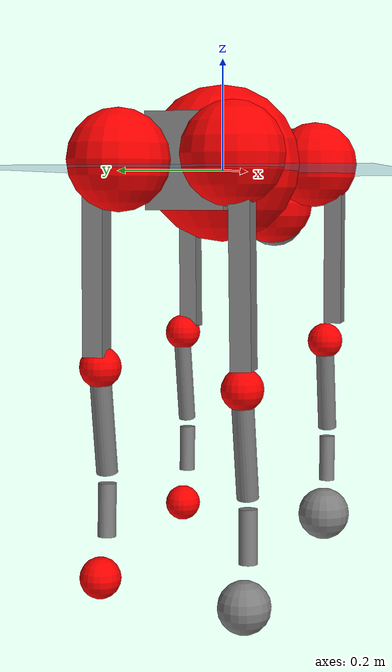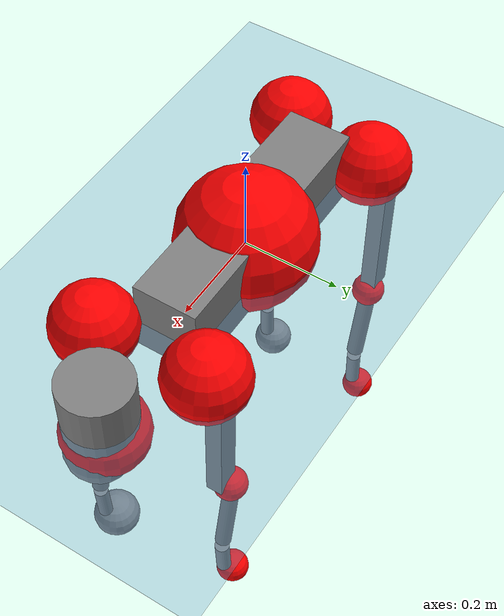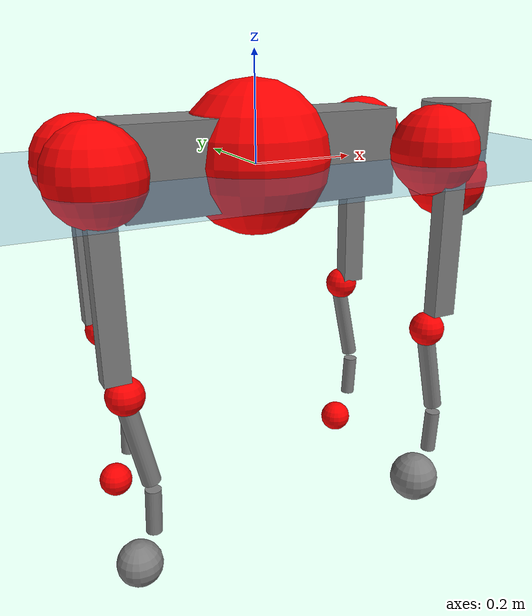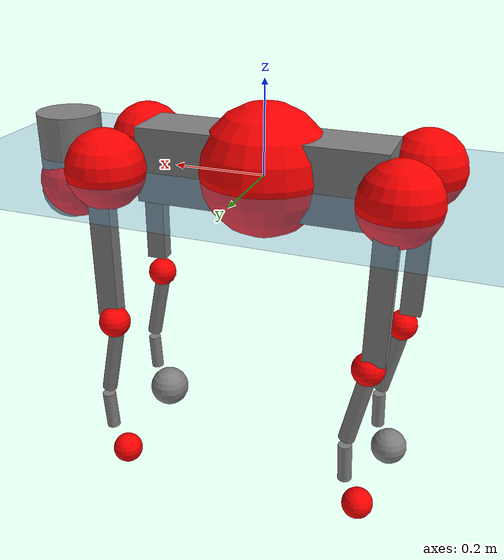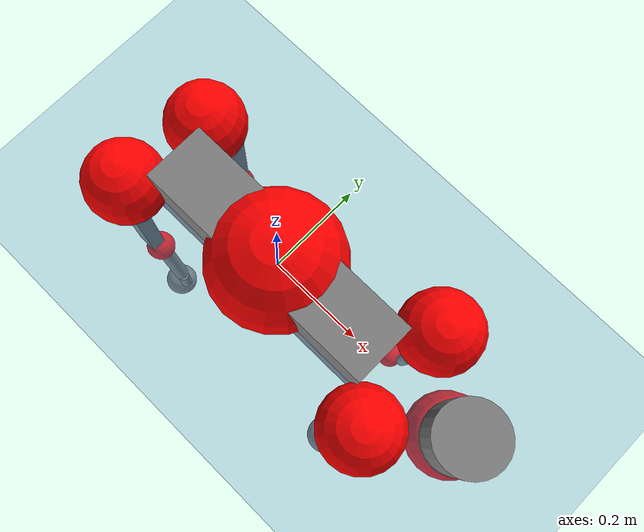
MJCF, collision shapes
<mujoco model="go2">
  <compiler angle="radian" assetdir="assets" balanceinertia="true" inertiafromgeom="false"/>

  <option timestep="0.005" density="1.2" viscosity="2e-05"/>

  <size nkey="1"/>

  <visual>
    <quality shadowsize="8192"/>
    <map shadowclip="0.5"/>
  </visual>

  <default>
    <default class="/">
      <geom contype="0" conaffinity="0" group="1" solref="-1000 -80"/>
      <site size="0.01 0.005 0.005" group="5"/>
      <general forcelimited="true" biastype="affine" gainprm="20" biasprm="0 -20 -0.5"/>
      <default class="go2">
        <joint armature="0.01" damping="0.01" frictionloss="0.2"/>
        <geom condim="1" margin="0.001"/>
        <default class="visual">
          <geom type="mesh" group="2"/>
        </default>
        <default class="collision">
          <geom group="3"/>
          <default class="foot">
            <geom size="0.022 0 0" condim="6" priority="1" friction="0.8 0.02 0.01" solimp="0.015 1 0.022"/>
          </default>
        </default>
        <default class="reward_collision_sphere">
          <geom group="5" rgba="1 0 0 1"/>
        </default>
      </default>
    </default>
  </default>

  <asset>
    <texture type="skybox" colorspace="auto" name="//unnamed_texture_0" builtin="gradient" rgb1="0.95 0.95 0.95" rgb2="0.95 0.95 0.95" width="100" height="600"/>
    <texture type="2d" colorspace="auto" name="texplane" builtin="checker" rgb1="0.345 0.575 0.748" rgb2="0.345 0.575 0.748" markrgb="1 1 1" width="512" height="512"/>
    <material name="MatPlane" class="/" texture="texplane" texuniform="true" texrepeat="2 2" specular="0.9"/>
    <material name="metal" class="/" rgba="0.9 0.95 0.95 1"/>
    <material name="black" class="/" rgba="0 0 0 1"/>
    <material name="white" class="/"/>
    <material name="gray" class="/" rgba="0.671705 0.692426 0.77427 1"/>
    <mesh name="base_0" class="/" file="base_0.obj"/>
    <mesh name="base_1" class="/" file="base_1.obj"/>
    <mesh name="base_2" class="/" file="base_2.obj"/>
    <mesh name="base_3" class="/" file="base_3.obj"/>
    <mesh name="base_4" class="/" file="base_4.obj"/>
    <mesh name="hip_0" class="/" file="hip_0.obj"/>
    <mesh name="hip_1" class="/" file="hip_1.obj"/>
    <mesh name="thigh_0" class="/" file="thigh_0.obj"/>
    <mesh name="thigh_1" class="/" file="thigh_1.obj"/>
    <mesh name="thigh_mirror_0" class="/" file="thigh_mirror_0.obj"/>
    <mesh name="thigh_mirror_1" class="/" file="thigh_mirror_1.obj"/>
    <mesh name="calf_0" class="/" file="calf_0.obj"/>
    <mesh name="calf_1" class="/" file="calf_1.obj"/>
    <mesh name="calf_mirror_0" class="/" file="calf_mirror_0.obj"/>
    <mesh name="calf_mirror_1" class="/" file="calf_mirror_1.obj"/>
    <mesh name="foot" class="/" file="foot.obj"/>
  </asset>

  <worldbody>
    <geom name="floor" class="/" size="100 100 0.125" type="plane" group="0" material="MatPlane"/>
    <light name="toplight_shadow" class="/" pos="0 0 5" dir="0.0990148 0.0990148 -0.990148" type="directional" ambient="0.04 0.04 0.04" diffuse="0.55 0.55 0.55" specular="0.12 0.12 0.12"/>
    <light name="toplight_fill" class="/" pos="0 0 5" dir="0.0990148 0.0990148 -0.990148" type="directional" castshadow="false" ambient="0.04 0.04 0.04" diffuse="0.3 0.3 0.3" specular="0.08 0.08 0.08"/>
    <body name="trunk" childclass="go2" pos="-0.00345919 8.86079e-05 0.0119444" quat="0.999998 0.000371429 -0.00141688 0.00127739">
      <inertial pos="0.0474544 0.01471 -0.0176912" quat="-0.0151657 0.737389 -0.00343431 0.67529" mass="19.4386" diaginertia="0.888226 0.05851 0.280822"/>
      <joint name="//unnamed_joint_0" type="free" armature="0" damping="0" frictionloss="0"/>
      <geom name="//unnamed_geom_1" class="visual" material="black" mesh="base_0"/>
      <geom name="//unnamed_geom_2" class="visual" material="black" mesh="base_1"/>
      <geom name="//unnamed_geom_3" class="visual" material="black" mesh="base_2"/>
      <geom name="//unnamed_geom_4" class="visual" material="white" mesh="base_3"/>
      <geom name="//unnamed_geom_5" class="visual" material="gray" mesh="base_4"/>
      <geom name="trunk_1" class="collision" size="0.266621 0.0662655 0.0807943" type="box"/>
      <geom name="trunk_2" class="collision" size="0.0708722 0.063785" pos="0.464308 0 0.0168214" type="cylinder"/>
      <geom name="trunk_3" class="collision" size="0.0666198" pos="0.477341 0 -0.100928"/>
      <geom name="//unnamed_geom_9" class="reward_collision_sphere" size="0.141744"/>
      <geom name="//unnamed_geom_10" class="reward_collision_sphere" size="0.0850466" pos="0.456162 0 -0.0756963"/>
      <site name="imu" pos="0.0423659 0.0219814 -0.00189586" size="0.0141744"/>
      <camera name="track" pos="0 -1.88208 0" quat="0.707107 0.707107 0 0" mode="trackcom"/>
      <camera name="ego_camera" pos="0.508295 0 0.0756963" quat="-0.5 -0.5 0.5 0.5"/>
      <body name="FL_hip" pos="0.310729 0.0516849 0.00181553" quat="0.999989 -0.0022587 -0.00308632 0.00271522">
        <inertial pos="-0.0236505 0.0113396 0.00270141" quat="0.523704 0.503389 0.460867 0.509838" mass="2.36312" diaginertia="0.0124695 0.000459916 0.00604477"/>
        <joint name="FL_hip_joint" pos="0 0 0" axis="0.997984 -0.0450746 -0.0446685" stiffness="0.0339859" range="-0.986643 0.842714" armature="0.00285504" damping="0.0826893" frictionloss="0.356202"/>
        <geom name="//unnamed_geom_11" class="visual" material="metal" mesh="hip_0"/>
        <geom name="//unnamed_geom_12" class="visual" material="gray" mesh="hip_1"/>
        <geom name="//unnamed_geom_13" class="collision" size="0.0652024 0.0283489" pos="0 0.0752831 0" quat="0.707107 0.707107 0 0" type="cylinder"/>
        <geom name="//unnamed_geom_14" class="reward_collision_sphere" size="0.0850466" pos="0 0.0658727 0"/>
        <body name="FL_thigh" pos="-0.000312534 0.09306 -0.000280707" quat="0.999999 -0.000599326 0.00125656 0.000718782">
          <inertial pos="-0.0145959 -0.0190783 -0.0701517" quat="0.835944 0.0689257 -0.0468403 0.542451" mass="2.72933" diaginertia="0.0782504 0.00416718 0.0121169"/>
          <joint name="FL_thigh_joint" pos="0 0 0" axis="0.0415957 0.996598 -0.0711467" range="-1.44647 3.38639" armature="0.0109519" damping="0.0410152" frictionloss="0.49067"/>
          <geom name="//unnamed_geom_15" class="visual" material="metal" mesh="thigh_0"/>
          <geom name="//unnamed_geom_16" class="visual" material="gray" mesh="thigh_1"/>
          <geom name="//unnamed_geom_17" class="collision" size="0.150958 0.0173637 0.0240965" pos="0 0 -0.179148" quat="0.707107 0 0.707107 0" type="box"/>
          <body name="FL_calf" pos="-0.0134843 0.0138756 -0.341503" quat="0.999977 0.00211423 0.00507418 -0.00389012">
            <inertial pos="0.0162661 -0.000920055 -0.231692" quat="0.730623 0.00186553 -0.0173039 0.682559" mass="0.796851" diaginertia="0.0194188 0.0010744 0.00086337"/>
            <joint name="FL_calf_joint" pos="0 0 0" axis="0.0160562 0.998209 -0.0576354" stiffness="0.0101206" range="-2.49238 -1.00078" armature="0.00775804" damping="0.0746339" frictionloss="0.125603"/>
            <geom name="//unnamed_geom_18" class="visual" material="gray" mesh="calf_0"/>
            <geom name="//unnamed_geom_19" class="visual" material="black" mesh="calf_1"/>
            <geom name="FL_calf0" class="collision" size="0.0170093 0.0850466" pos="0.0130332 0 -0.100928" quat="0.994493 0 -0.104807 0" type="cylinder"/>
            <geom name="//unnamed_geom_21" class="collision" size="0.0155919 0.0460669" pos="0.032583 0 -0.248957" quat="0.999688 0 0.0249974 0" type="cylinder"/>
            <geom name="//unnamed_geom_22" class="visual" pos="0 0 -0.358296" quat="1 0 0 0" material="black" mesh="foot"/>
            <geom name="FL_foot" class="foot" size="0.0347555" pos="-0.0032583 0 -0.358296"/>
            <geom name="//unnamed_geom_24" class="reward_collision_sphere" size="0.0354361"/>
            <geom name="//unnamed_geom_25" class="reward_collision_sphere" size="0.0354361" pos="-0.0032583 0 -0.358296"/>
            <site name="FL_foot" class="foot" pos="-0.0032583 0 -0.358296" size="0.0141744"/>
          </body>
        </body>
      </body>
      <body name="FR_hip" pos="0.326408 -0.0476688 0.00336362" quat="1 -0.00070702 -0.000161519 -3.79478e-05">
        <inertial pos="-0.0232727 0.0019805 -0.00337619" quat="0.500837 0.507978 0.50003 0.491009" mass="1.79385" diaginertia="0.00971314 0.00033007 0.00559364"/>
        <joint name="FR_hip_joint" pos="0 0 0" axis="0.999229 -0.0127104 -0.0371358" stiffness="0.0365165" range="-0.745966 0.952204" armature="0.0238267" damping="0.0142691" frictionloss="0.492527"/>
        <geom name="//unnamed_geom_26" class="visual" pos="0 -6.45617e-09 -2.76918e-07" quat="4.63268e-05 1 0 0" material="metal" mesh="hip_0"/>
        <geom name="//unnamed_geom_27" class="visual" pos="0 -1.04662e-08 6.84925e-07" quat="4.63268e-05 1 0 0" material="gray" mesh="hip_1"/>
        <geom name="//unnamed_geom_28" class="collision" size="0.0652024 0.0283489" pos="0 -0.0752831 0" quat="0.707107 0.707107 0 0" type="cylinder"/>
        <geom name="//unnamed_geom_29" class="reward_collision_sphere" size="0.0850466" pos="0 -0.0658727 0"/>
        <body name="FR_thigh" pos="0.00883479 -0.105388 0.0095814" quat="0.999997 0.00054773 -0.000991907 -0.00235079">
          <inertial pos="-0.00461365 0.0163954 -0.0516329" quat="0.510013 -0.0727534 0.0797667 0.853365" mass="4.5565" diaginertia="0.0757596 0.00430529 0.0121681"/>
          <joint name="FR_thigh_joint" pos="0 0 0" axis="0.0431165 -0.997868 0.0489925" stiffness="0.017825" range="-3.82286 1.34024" armature="0.0130524" damping="0.0782126" frictionloss="0.0308482"/>
          <geom name="//unnamed_geom_30" class="visual" material="metal" mesh="thigh_mirror_0"/>
          <geom name="//unnamed_geom_31" class="visual" material="gray" mesh="thigh_mirror_1"/>
          <geom name="//unnamed_geom_32" class="collision" size="0.150958 0.0173637 0.0240965" pos="0 0 -0.179148" quat="0.707107 0 0.707107 0" type="box"/>
          <body name="FR_calf" pos="-0.0146056 0.0155919 -0.366643" quat="0.999999 8.77256e-05 0.00129542 -0.000914284">
            <inertial pos="0.0110195 0.00328241 -0.25335" quat="0.71045 -0.000935152 0.0527066 0.701771" mass="0.725764" diaginertia="0.0205893 0.00125819 0.000690037"/>
            <joint name="FR_calf_joint" pos="0 0 0" axis="0.0109127 -0.999883 0.0107158" range="1.05075 2.49888" armature="0.0193056" damping="0" frictionloss="0.512788"/>
            <geom name="//unnamed_geom_33" class="visual" material="gray" mesh="calf_mirror_0"/>
            <geom name="//unnamed_geom_34" class="visual" material="black" mesh="calf_mirror_1"/>
            <geom name="FR_calf0" class="collision" size="0.0184268 0.0850466" pos="0.0162915 0 -0.100928" quat="0.995004 0 -0.0998334 0" type="cylinder"/>
            <geom name="//unnamed_geom_36" class="collision" size="0.0155919 0.0460669" pos="0.032583 0 -0.248957" quat="0.999688 0 0.0249974 0" type="cylinder"/>
            <geom name="//unnamed_geom_37" class="visual" pos="0 0 -0.358296" quat="1 0 0 0" material="black" mesh="foot"/>
            <geom name="FR_foot" class="foot" size="0.0521618" pos="-0.0032583 0 -0.358296"/>
            <geom name="//unnamed_geom_39" class="reward_collision_sphere" size="0.0354361"/>
            <geom name="//unnamed_geom_40" class="reward_collision_sphere" size="0.0354361" pos="-0.0032583 0 -0.358296"/>
            <site name="FR_foot" class="foot" pos="-0.0032583 0 -0.358296" size="0.0141744"/>
          </body>
        </body>
      </body>
      <body name="RL_hip" pos="-0.29855 0.0350375 0.000420085" quat="0.999994 0.00321645 0.000617152 0.000777382">
        <inertial pos="-0.000201122 -0.0133005 -0.00285343" quat="0.462302 0.519332 0.491839 0.524085" mass="1.91137" diaginertia="0.0130636 0.000411752 0.00899086"/>
        <joint name="RL_hip_joint" pos="0 0 0" axis="-0.999259 -0.033641 -0.0187096" stiffness="0.038026" range="-1.20666 1.40353" armature="0.0254901" damping="0.0663415" frictionloss="0.317282"/>
        <geom name="//unnamed_geom_41" class="visual" pos="4.61624e-10 0 9.0489e-08" quat="4.63268e-05 0 1 0" material="metal" mesh="hip_0"/>
        <geom name="//unnamed_geom_42" class="visual" pos="7.48348e-10 0 8.02508e-08" quat="4.63268e-05 0 1 0" material="gray" mesh="hip_1"/>
        <geom name="//unnamed_geom_43" class="collision" size="0.0652024 0.0283489" pos="0 0.0752831 0" quat="0.707107 0.707107 0 0" type="cylinder"/>
        <geom name="//unnamed_geom_44" class="reward_collision_sphere" size="0.0850466" pos="0 0.0658727 0"/>
        <body name="RL_thigh" pos="0.0112617 0.107373 0.00623528" quat="1 -6.33168e-05 0.000210285 8.63905e-05">
          <inertial pos="-0.00757826 -0.0344938 -0.0502953" quat="0.82616 0.0757714 -0.031874 0.557407" mass="3.31769" diaginertia="0.068525 0.00493455 0.0108955"/>
          <joint name="RL_thigh_joint" pos="0 0 0" axis="-0.0646368 0.997595 -0.0250155" range="-0.550399 4.61228" armature="0.0209642" damping="0.054583" frictionloss="0.174623"/>
          <geom name="//unnamed_geom_45" class="visual" material="metal" mesh="thigh_0"/>
          <geom name="//unnamed_geom_46" class="visual" material="gray" mesh="thigh_1"/>
          <geom name="//unnamed_geom_47" class="collision" size="0.150958 0.0173637 0.0240965" pos="0 0 -0.179148" quat="0.707107 0 0.707107 0" type="box"/>
          <body name="RL_calf" pos="0.0113902 -0.00233715 -0.350263" quat="0.999991 -0.00118283 0.00111543 -0.00381841">
            <inertial pos="0.0102189 -0.000125324 -0.235964" quat="0.694532 -0.0795758 0.0244701 0.714629" mass="0.682457" diaginertia="0.0162991 0.00101445 0.000858057"/>
            <joint name="RL_calf_joint" pos="0 0 0" axis="0.0630172 0.998005 -0.00383693" range="-2.72546 -0.834405" armature="0.0226564" damping="0.0271324" frictionloss="0.121579"/>
            <geom name="//unnamed_geom_48" class="visual" material="gray" mesh="calf_0"/>
            <geom name="//unnamed_geom_49" class="visual" material="black" mesh="calf_1"/>
            <geom name="RL_calf0" class="collision" size="0.0184268 0.0850466" pos="0.0162915 0 -0.100928" quat="0.995004 0 -0.0998334 0" type="cylinder"/>
            <geom name="//unnamed_geom_51" class="collision" size="0.0155919 0.0460669" pos="0.032583 0 -0.248957" quat="0.999688 0 0.0249974 0" type="cylinder"/>
            <geom name="//unnamed_geom_52" class="visual" pos="0 0 -0.358296" quat="1 0 0 0" material="black" mesh="foot"/>
            <geom name="RL_foot" class="foot" size="0.0110515" pos="-0.0032583 0 -0.358296"/>
            <geom name="//unnamed_geom_54" class="reward_collision_sphere" size="0.0354361"/>
            <geom name="//unnamed_geom_55" class="reward_collision_sphere" size="0.0354361" pos="-0.0032583 0 -0.358296"/>
            <site name="RL_foot" class="foot" pos="-0.0032583 0 -0.358296" size="0.0141744"/>
          </body>
        </body>
      </body>
      <body name="RR_hip" pos="-0.317703 -0.0285612 0.00894113" quat="0.999979 -0.00629098 0.000829183 0.00137503">
        <inertial pos="0.0241946 -0.000251786 -0.0144394" quat="0.515882 0.484916 0.513406 0.484909" mass="2.15467" diaginertia="0.0112367 0.00049395 0.00870609"/>
        <joint name="RR_hip_joint" pos="0 0 0" axis="-0.999971 0.00545482 -0.00522121" stiffness="0.0473391" range="-0.769223 0.716354" armature="0.0153793" damping="0.0633209" frictionloss="0.275566"/>
        <geom name="//unnamed_geom_56" class="visual" pos="-4.85447e-10 -6.45617e-09 3.67407e-07" quat="2.14617e-09 4.63268e-05 4.63268e-05 -1" material="metal" mesh="hip_0"/>
        <geom name="//unnamed_geom_57" class="visual" pos="-6.89425e-10 -1.04662e-08 -6.04674e-07" quat="2.14617e-09 4.63268e-05 4.63268e-05 -1" material="gray" mesh="hip_1"/>
        <geom name="//unnamed_geom_58" class="collision" size="0.0652024 0.0283489" pos="0 -0.0752831 0" quat="0.707107 0.707107 0 0" type="cylinder"/>
        <geom name="//unnamed_geom_59" class="reward_collision_sphere" size="0.0850466" pos="0 -0.0658727 0"/>
        <body name="RR_thigh" pos="-0.00283459 -0.0804946 -0.0153424" quat="0.999999 0.000388598 -0.000534506 0.00152186">
          <inertial pos="-0.0182369 0.0267471 -0.0601084" quat="0.551742 -0.019544 0.0837286 0.829571" mass="4.80878" diaginertia="0.0977839 0.00510141 0.0133768"/>
          <joint name="RR_thigh_joint" pos="0 0 0" axis="0.0677351 -0.99769 0.00517611" stiffness="0.00782803" range="-4.59344 0.523594" armature="0.0201302" damping="0.0491855" frictionloss="0.2728"/>
          <geom name="//unnamed_geom_60" class="visual" material="metal" mesh="thigh_mirror_0"/>
          <geom name="//unnamed_geom_61" class="visual" material="gray" mesh="thigh_mirror_1"/>
          <geom name="//unnamed_geom_62" class="collision" size="0.150958 0.0173637 0.0240965" pos="0 0 -0.179148" quat="0.707107 0 0.707107 0" type="box"/>
          <body name="RR_calf" pos="0.0150059 0.00573322 -0.363215" quat="0.999989 0.000715095 -0.00209721 0.00416388">
            <inertial pos="0.0184721 -0.000694573 -0.240711" quat="0.748118 -0.0282583 -0.00345863 0.662955" mass="0.626576" diaginertia="0.0185223 0.000859007 0.000666888"/>
            <joint name="RR_calf_joint" pos="0 0 0" axis="-0.00204842 -0.999998 0.000686155" range="0.945684 2.86556" armature="0.0256546" damping="0" frictionloss="0.278107"/>
            <geom name="//unnamed_geom_63" class="visual" material="gray" mesh="calf_mirror_0"/>
            <geom name="//unnamed_geom_64" class="visual" material="black" mesh="calf_mirror_1"/>
            <geom name="RR_calf0" class="collision" size="0.0184268 0.0850466" pos="0.0162915 0 -0.100928" quat="0.995004 0 -0.0998334 0" type="cylinder"/>
            <geom name="//unnamed_geom_66" class="collision" size="0.0155919 0.0460669" pos="0.032583 0 -0.248957" quat="0.999688 0 0.0249974 0" type="cylinder"/>
            <geom name="//unnamed_geom_67" class="visual" pos="0 0 -0.358296" quat="1 0 0 0" material="black" mesh="foot"/>
            <geom name="RR_foot" class="foot" size="0.0447249" pos="-0.0032583 0 -0.358296"/>
            <geom name="//unnamed_geom_69" class="reward_collision_sphere" size="0.0354361"/>
            <geom name="//unnamed_geom_70" class="reward_collision_sphere" size="0.0354361" pos="-0.0032583 0 -0.358296"/>
            <site name="RR_foot" class="foot" pos="-0.0032583 0 -0.358296" size="0.0141744"/>
          </body>
        </body>
      </body>
    </body>
  </worldbody>

  <contact>
    <pair class="/" geom1="floor" geom2="FL_foot" name="//unnamed_contact_0"/>
    <pair class="/" geom1="floor" geom2="FR_foot" name="//unnamed_contact_1"/>
    <pair class="/" geom1="floor" geom2="RL_foot" name="//unnamed_contact_2"/>
    <pair class="/" geom1="floor" geom2="RR_foot" name="//unnamed_contact_3"/>
  </contact>

  <actuator>
    <general name="FL_hip" class="/" joint="FL_hip_joint" forcerange="-39.6924 39.6924" gainprm="24.3792" biasprm="0 -24.3792 -0.812161"/>
    <general name="FL_thigh" class="/" joint="FL_thigh_joint" forcerange="-46.7173 46.7173" gainprm="24.3792" biasprm="0 -24.3792 -0.812161"/>
    <general name="FL_calf" class="/" joint="FL_calf_joint" forcerange="-79.5673 79.5673" gainprm="24.3792" biasprm="0 -24.3792 -0.812161"/>
    <general name="FR_hip" class="/" joint="FR_hip_joint" forcerange="-47.4493 47.4493" gainprm="24.3792" biasprm="0 -24.3792 -0.812161"/>
    <general name="FR_thigh" class="/" joint="FR_thigh_joint" forcerange="-22.1919 22.1919" gainprm="24.3792" biasprm="0 -24.3792 -0.812161"/>
    <general name="FR_calf" class="/" joint="FR_calf_joint" forcerange="-99.1954 99.1954" gainprm="24.3792" biasprm="0 -24.3792 -0.812161"/>
    <general name="RL_hip" class="/" joint="RL_hip_joint" forcerange="-32.7247 32.7247" gainprm="24.3792" biasprm="0 -24.3792 -0.812161"/>
    <general name="RL_thigh" class="/" joint="RL_thigh_joint" forcerange="-52.016 52.016" gainprm="24.3792" biasprm="0 -24.3792 -0.812161"/>
    <general name="RL_calf" class="/" joint="RL_calf_joint" forcerange="-78.7658 78.7658" gainprm="24.3792" biasprm="0 -24.3792 -0.812161"/>
    <general name="RR_hip" class="/" joint="RR_hip_joint" forcerange="-42.8754 42.8754" gainprm="24.3792" biasprm="0 -24.3792 -0.812161"/>
    <general name="RR_thigh" class="/" joint="RR_thigh_joint" forcerange="-53.8013 53.8013" gainprm="24.3792" biasprm="0 -24.3792 -0.812161"/>
    <general name="RR_calf" class="/" joint="RR_calf_joint" forcerange="-31.1385 31.1385" gainprm="24.3792" biasprm="0 -24.3792 -0.812161"/>
  </actuator>

  <sensor>
    <gyro site="imu" name="imu_angular_velocity"/>
    <velocimeter site="imu" name="imu_linear_velocity"/>
    <framelinvel objtype="site" objname="FL_foot" name="FL_foot_global_linear_velocity"/>
    <framelinvel objtype="site" objname="FR_foot" name="FR_foot_global_linear_velocity"/>
    <framelinvel objtype="site" objname="RL_foot" name="RL_foot_global_linear_velocity"/>
    <framelinvel objtype="site" objname="RR_foot" name="RR_foot_global_linear_velocity"/>
  </sensor>

  <keyframe>
    <key name="home" qpos="0 0 0.325 1 0 0 0 0.1 0.8 -1.5 -0.1 -0.8 1.5 -0.1 0.8 -1.5 0.1 -0.8 1.5"/>
  </keyframe>
</mujoco>
